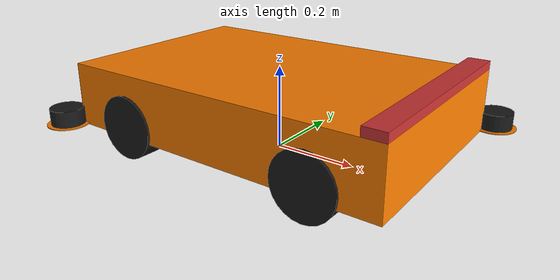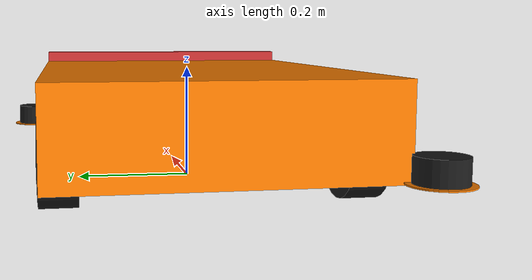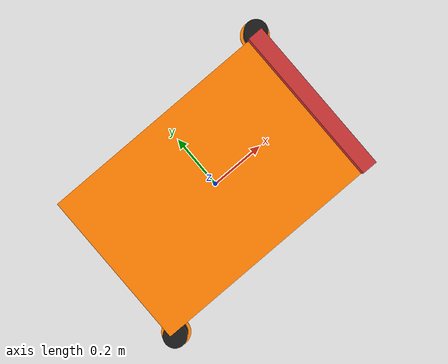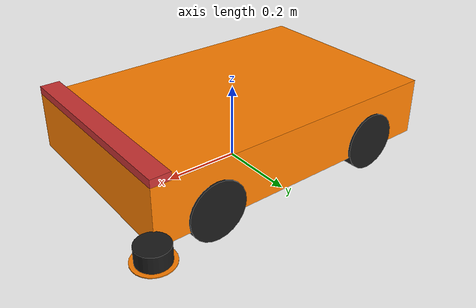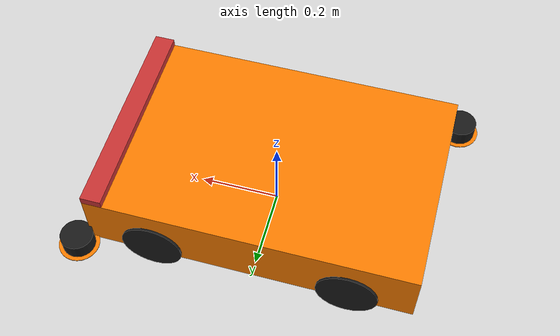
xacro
<?xml version="1.0"?>
<!--
mecanum_robot.urdf.xacro - FIXED VERSION
FIX: Corrected nested link structure for lidar2
-->

<robot name="mecanum_robot" xmlns:xacro="http://ros.org/wiki/xacro">

  <!-- PROPERTIES -->

  <xacro:property name="base_length" value="0.48"/>
  <xacro:property name="base_width" value="0.47"/>
  <xacro:property name="base_height" value="0.15"/>
  <xacro:property name="base_mass" value="20.0"/>

  <xacro:property name="wheel_radius" value="0.075"/>
  <xacro:property name="wheel_width" value="0.06"/>
  <xacro:property name="wheel_mass" value="1.5"/>
  <xacro:property name="wheel_separation_x" value="0.48"/>
  <xacro:property name="wheel_separation_y" value="0.47"/>

  <xacro:property name="lidar_height" value="0.08"/>
  <xacro:property name="imu_height" value="0.05"/>

  <!-- MATERIALS -->

  <material name="blue">
    <color rgba="0.2 0.2 0.8 1.0"/>
  </material>

  <material name="black">
    <color rgba="0.1 0.1 0.1 1.0"/>
  </material>

  <material name="white">
    <color rgba="0.9 0.9 0.9 1.0"/>
  </material>

  <material name="red">
    <color rgba="0.8 0.2 0.2 1.0"/>
  </material>

  <material name="green">
    <color rgba="0.2 0.8 0.2 1.0"/>
  </material>

  <material name="orange">
    <color rgba="1.0 0.5 0.0 1.0"/>
  </material>

  <!-- BASE_LINK -->

  <link name="base_link">
    <visual>
      <geometry>
        <box size="0.8 0.52 ${base_height}"/>
      </geometry>
      <origin xyz="0 0 ${base_height/2 + 0.05}" rpy="0 0 0"/>
      <material name="orange"/>
    </visual>

    <collision>
      <geometry>
        <box size="${base_length} ${base_width} ${base_height}"/>
      </geometry>
      <origin xyz="0 0 ${base_height/2 + 0.05}" rpy="0 0 0"/>
    </collision>

    <inertial>
      <mass value="${base_mass}"/>
      <origin xyz="0 0 ${base_height/2 + 0.05 }" rpy="0 0 0"/>
      <inertia
        ixx="${(1/12) * base_mass * (base_width*base_width + base_height*base_height)}"
        iyy="${(1/12) * base_mass * (base_length*base_length + base_height*base_height)}"
        izz="${(1/12) * base_mass * (base_length*base_length + base_width*base_width)}"
        ixy="0" ixz="0" iyz="0"/>
    </inertial>
  </link>

  <!-- LIDAR 1 - Thân LiDAR -->

  <link name="lidar1_link">
    <visual>
      <geometry>
        <cylinder radius="0.04" length="0.04"/>
      </geometry>
      <origin xyz="0 0 0" rpy="0 0 0"/>
      <material name="black"/>
    </visual>

    <collision>
      <geometry>
        <cylinder radius="0.04" length="0.04"/>
      </geometry>
      <origin xyz="0 0 0" rpy="0 0 0"/>
    </collision>

    <inertial>
      <mass value="0.2"/>
      <origin xyz="0 0 0" rpy="0 0 0"/>
      <inertia ixx="0.0001" iyy="0.0001" izz="0.0001"
               ixy="0" ixz="0" iyz="0"/>
    </inertial>
  </link>

  <joint name="lidar1_joint" type="fixed">
    <parent link="base_link"/>
    <child link="lidar1_link"/>
    <origin xyz="0.42 0.29 0.075" rpy="0 0 3.1456"/>
  </joint>

  <!-- LIDAR 1 - Đế cam -->

  <link name="de_lidar1_link">
    <visual>
      <geometry>
        <cylinder radius="0.05" length="0.002"/>
      </geometry>
      <origin xyz="0 0 0" rpy="0 0 0"/>
      <material name="lidar1_base_orange">
        <color rgba="1.0 0.5 0.0 1.0"/>
      </material>
    </visual>

    <collision>
      <geometry>
        <cylinder radius="0.05" length="0.002"/>
      </geometry>
      <origin xyz="0 0 0" rpy="0 0 0"/>
    </collision>

    <inertial>
      <mass value="0.01"/>
      <origin xyz="0 0 0" rpy="0 0 0"/>
      <inertia ixx="0.00001" iyy="0.00001" izz="0.00001"
               ixy="0" ixz="0" iyz="0"/>
    </inertial>
  </link>

  <joint name="de_lidar1_joint" type="fixed">
    <parent link="lidar1_link"/>
    <child link="de_lidar1_link"/>
    <origin xyz="0 0 -0.021" rpy="0 0 0"/>
  </joint>

  <!-- LIDAR 2 - Thân LiDAR (✅ FIXED: Đóng đúng tag) -->

  <link name="lidar2_link">
    <visual>
      <geometry>
        <cylinder radius="0.04" length="0.04"/>
      </geometry>
      <origin xyz="0 0 0" rpy="0 0 0"/>
      <material name="black"/>
    </visual>

    <collision>
      <geometry>
        <cylinder radius="0.04" length="0.04"/>
      </geometry>
      <origin xyz="0 0 0" rpy="0 0 0"/>
    </collision>

    <inertial>
      <mass value="0.2"/>
      <origin xyz="0 0 0" rpy="0 0 0"/>
      <inertia ixx="0.0001" iyy="0.0001" izz="0.0001"
               ixy="0" ixz="0" iyz="0"/>
    </inertial>
  </link>

  <joint name="lidar2_joint" type="fixed">
    <parent link="base_link"/>
    <child link="lidar2_link"/>
    <origin xyz="-0.42 -0.29 0.075" rpy="0 0 0"/>
  </joint>

  <!-- LIDAR 2 - Đế cam (✅ FIXED: Tách riêng ra ngoài) -->

  <link name="de_lidar2_link">
    <visual>
      <geometry>
        <cylinder radius="0.05" length="0.002"/>
      </geometry>
      <origin xyz="0 0 0" rpy="0 0 0"/>
      <material name="lidar2_base_orange">
        <color rgba="1.0 0.5 0.0 1.0"/>
      </material>
    </visual>

    <collision>
      <geometry>
        <cylinder radius="0.05" length="0.002"/>
      </geometry>
      <origin xyz="0 0 0" rpy="0 0 0"/>
    </collision>

    <inertial>
      <mass value="0.01"/>
      <origin xyz="0 0 0" rpy="0 0 0"/>
      <inertia ixx="0.00001" iyy="0.00001" izz="0.00001"
               ixy="0" ixz="0" iyz="0"/>
    </inertial>
  </link>

  <joint name="de_lidar2_joint" type="fixed">
    <parent link="lidar2_link"/>
    <child link="de_lidar2_link"/>
    <origin xyz="0 0 -0.021" rpy="0 0 0"/>
  </joint>

  <!-- IMU SENSOR -->

  <link name="imu_link">
    <visual>
      <geometry>
        <box size="0.05 0.04 0.02"/>
      </geometry>
      <origin xyz="0 0 0" rpy="0 0 0"/>
      <material name="blue"/>
    </visual>

    <collision>
      <geometry>
        <box size="0.05 0.04 0.02"/>
      </geometry>
      <origin xyz="0 0 0" rpy="0 0 0"/>
    </collision>

    <inertial>
      <mass value="0.05"/>
      <origin xyz="0 0 0" rpy="0 0 0"/>
      <inertia ixx="0.00001" iyy="0.00001" izz="0.00001"
               ixy="0" ixz="0" iyz="0"/>
    </inertial>
  </link>

  <joint name="imu_joint" type="fixed">
    <parent link="base_link"/>
    <child link="imu_link"/>
    <origin xyz="0 0 ${imu_height}" rpy="0 0 -1.57"/>
  </joint>

  <!-- WHEELS -->

  <!-- FRONT LEFT -->
  <link name="wheel_fl_link">
    <visual>
      <geometry>
        <cylinder radius="${wheel_radius}" length="${wheel_width}"/>
      </geometry>
      <origin xyz="0 0 0" rpy="1.5708 0 0"/>
      <material name="black"/>
    </visual>

    <collision>
      <geometry>
        <cylinder radius="${wheel_radius}" length="${wheel_width}"/>
      </geometry>
      <origin xyz="0 0 0" rpy="1.5708 0 0"/>
    </collision>

    <inertial>
      <mass value="${wheel_mass}"/>
      <origin xyz="0 0 0" rpy="1.5708 0 0"/>
      <inertia
        ixx="${(1/12) * wheel_mass * (3*wheel_radius*wheel_radius + wheel_width*wheel_width)}"
        iyy="${(1/12) * wheel_mass * (3*wheel_radius*wheel_radius + wheel_width*wheel_width)}"
        izz="${(1/2) * wheel_mass * wheel_radius*wheel_radius}"
        ixy="0" ixz="0" iyz="0"/>
    </inertial>
  </link>

  <joint name="wheel_fl_joint" type="continuous">
    <parent link="base_link"/>
    <child link="wheel_fl_link"/>
    <origin xyz="${wheel_separation_x/2} ${wheel_separation_y/2} ${wheel_radius}" rpy="0 0 0"/>
    <axis xyz="0 1 0"/>
    <dynamics damping="0.1" friction="0.1"/>
  </joint>

  <!-- FRONT RIGHT -->
  <link name="wheel_fr_link">
    <visual>
      <geometry>
        <cylinder radius="${wheel_radius}" length="${wheel_width}"/>
      </geometry>
      <origin xyz="0 0 0" rpy="4.71239 0 0"/>
      <material name="black"/>
    </visual>

    <collision>
      <geometry>
        <cylinder radius="${wheel_radius}" length="${wheel_width}"/>
      </geometry>
      <origin xyz="0 0 0" rpy="4.71239 0 0"/>
    </collision>

    <inertial>
      <mass value="${wheel_mass}"/>
      <origin xyz="0 0 0" rpy="4.71239 0 0"/>
      <inertia
        ixx="${(1/12) * wheel_mass * (3*wheel_radius*wheel_radius + wheel_width*wheel_width)}"
        iyy="${(1/12) * wheel_mass * (3*wheel_radius*wheel_radius + wheel_width*wheel_width)}"
        izz="${(1/2) * wheel_mass * wheel_radius*wheel_radius}"
        ixy="0" ixz="0" iyz="0"/>
    </inertial>
  </link>

  <joint name="wheel_fr_joint" type="continuous">
    <parent link="base_link"/>
    <child link="wheel_fr_link"/>
    <origin xyz="${wheel_separation_x/2} ${-wheel_separation_y/2} ${wheel_radius}" rpy="0 0 0"/>
    <axis xyz="0 1 0"/>
    <dynamics damping="0.1" friction="0.1"/>
  </joint>

  <!-- REAR LEFT -->
  <link name="wheel_rl_link">
    <visual>
      <geometry>
        <cylinder radius="${wheel_radius}" length="${wheel_width}"/>
      </geometry>
      <origin xyz="0 0 0" rpy="1.5708 0 0"/>
      <material name="black"/>
    </visual>

    <collision>
      <geometry>
        <cylinder radius="${wheel_radius}" length="${wheel_width}"/>
      </geometry>
      <origin xyz="0 0 0" rpy="1.5708 0 0"/>
    </collision>

    <inertial>
      <mass value="${wheel_mass}"/>
      <origin xyz="0 0 0" rpy="1.5708 0 0"/>
      <inertia
        ixx="${(1/12) * wheel_mass * (3*wheel_radius*wheel_radius + wheel_width*wheel_width)}"
        iyy="${(1/12) * wheel_mass * (3*wheel_radius*wheel_radius + wheel_width*wheel_width)}"
        izz="${(1/2) * wheel_mass * wheel_radius*wheel_radius}"
        ixy="0" ixz="0" iyz="0"/>
    </inertial>
  </link>

  <joint name="wheel_rl_joint" type="continuous">
    <parent link="base_link"/>
    <child link="wheel_rl_link"/>
    <origin xyz="${-wheel_separation_x/2} ${wheel_separation_y/2} ${wheel_radius}" rpy="0 0 0"/>
    <axis xyz="0 1 0"/>
    <dynamics damping="0.1" friction="0.1"/>
  </joint>

  <!-- REAR RIGHT -->
  <link name="wheel_rr_link">
    <visual>
      <geometry>
        <cylinder radius="${wheel_radius}" length="${wheel_width}"/>
      </geometry>
      <origin xyz="0 0 0" rpy="4.71239 0 0"/>
      <material name="black"/>
    </visual>

    <collision>
      <geometry>
        <cylinder radius="${wheel_radius}" length="${wheel_width}"/>
      </geometry>
      <origin xyz="0 0 0" rpy="4.71239 0 0"/>
    </collision>

    <inertial>
      <mass value="${wheel_mass}"/>
      <origin xyz="0 0 0" rpy="4.71239 0 0"/>
      <inertia
        ixx="${(1/12) * wheel_mass * (3*wheel_radius*wheel_radius + wheel_width*wheel_width)}"
        iyy="${(1/12) * wheel_mass * (3*wheel_radius*wheel_radius + wheel_width*wheel_width)}"
        izz="${(1/2) * wheel_mass * wheel_radius*wheel_radius}"
        ixy="0" ixz="0" iyz="0"/>
    </inertial>
  </link>

  <joint name="wheel_rr_joint" type="continuous">
    <parent link="base_link"/>
    <child link="wheel_rr_link"/>
    <origin xyz="${-wheel_separation_x/2} ${-wheel_separation_y/2} ${wheel_radius}" rpy="0 0 0"/>
    <axis xyz="0 1 0"/>
    <dynamics damping="0.1" friction="0.1"/>
  </joint>

  <!-- FRONT MARKER -->

  <link name="front_marker">
    <visual>
      <geometry>
        <box size="0.05 0.52 0.02"/>
      </geometry>
      <origin xyz="0 0 0" rpy="0 0 0"/>
      <material name="red"/>
    </visual>
  </link>

  <joint name="front_marker_joint" type="fixed">
    <parent link="base_link"/>
    <child link="front_marker"/>
    <origin xyz="0.375 0 ${base_height + 0.06}" rpy="0 0 0"/>
  </joint>

</robot>
